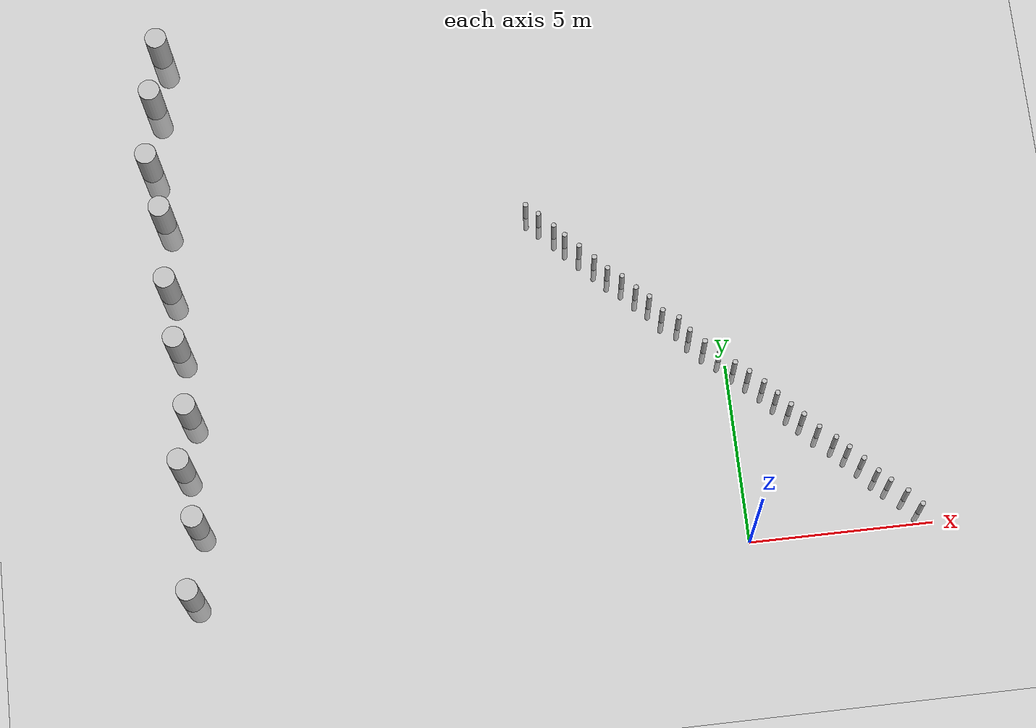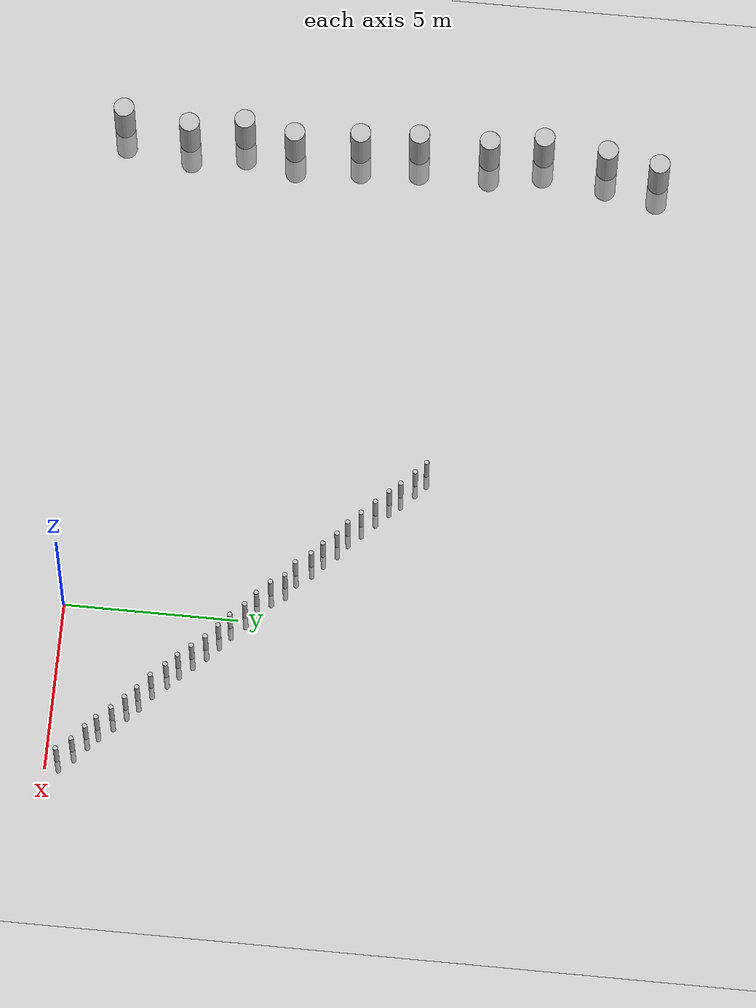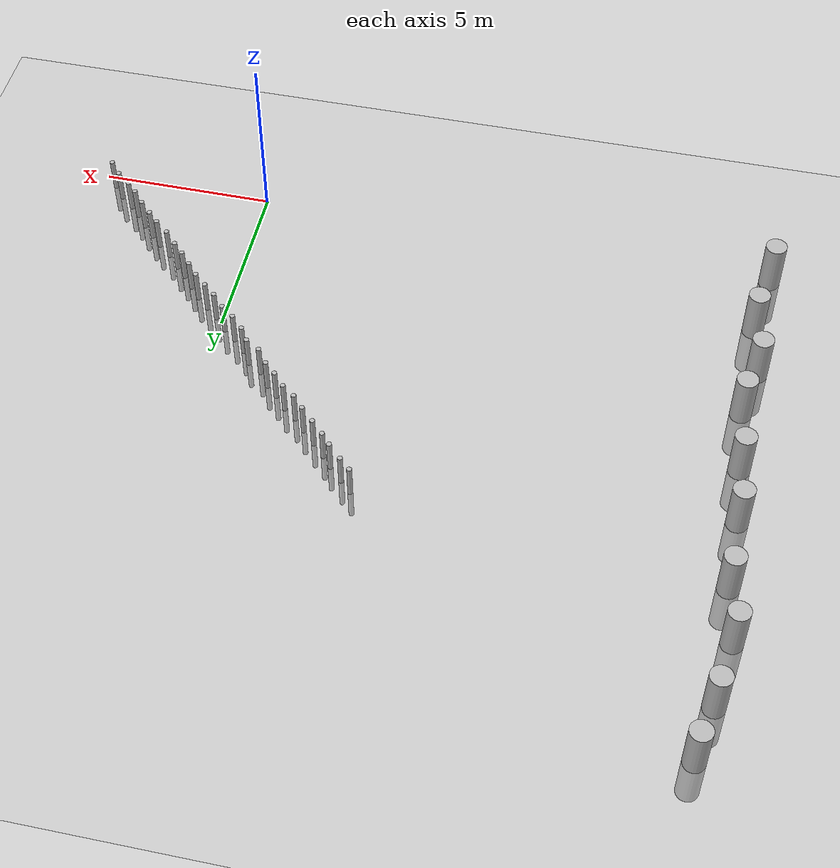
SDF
<sdf version="1.7">
 <world name="farmland_world">
  <model name="ground_plane">
   <static>1</static>
   <link name="link">
    <collision name="collision">
     <geometry><plane><normal>0 0 1</normal><size>40.0 40.0</size></plane></geometry>
     <surface><friction><ode><mu>100</mu><mu2>50</mu2></ode></friction></surface>
    </collision>
    <visual name="visual">
     <cast_shadows>0</cast_shadows>
     <geometry><plane><normal>0 0 1</normal><size>40.0 40.0</size></plane></geometry>
     <material>
      <script><uri>file://media/materials/scripts/gazebo.material</uri><name>Gazebo/Grey</name></script>
     </material>
    </visual>
   </link>
  </model>
  <model name="tree_0_0">
   <static>1</static>
   <link name="link">
    <collision name="collision">
     <geometry><cylinder><radius>0.3</radius><length>3.0</length></cylinder></geometry>
     <surface><friction><ode><mu>100</mu><mu2>50</mu2></ode></friction></surface>
    </collision>
    <visual name="visual">
     <geometry><cylinder><radius>0.3</radius><length>3.0</length></cylinder></geometry>
    </visual>
   </link>
   <pose>-14.76430496062966 15.89478843010668 0 0 0 0</pose>
  </model>
  <model name="tree_0_1">
   <static>1</static>
   <link name="link">
    <collision name="collision">
     <geometry><cylinder><radius>0.3</radius><length>3.0</length></cylinder></geometry>
     <surface><friction><ode><mu>100</mu><mu2>50</mu2></ode></friction></surface>
    </collision>
    <visual name="visual">
     <geometry><cylinder><radius>0.3</radius><length>3.0</length></cylinder></geometry>
    </visual>
   </link>
   <pose>-15.056819486717739 14.35567555755278 0 0 0 0</pose>
  </model>
  <model name="tree_0_2">
   <static>1</static>
   <link name="link">
    <collision name="collision">
     <geometry><cylinder><radius>0.3</radius><length>3.0</length></cylinder></geometry>
     <surface><friction><ode><mu>100</mu><mu2>50</mu2></ode></friction></surface>
    </collision>
    <visual name="visual">
     <geometry><cylinder><radius>0.3</radius><length>3.0</length></cylinder></geometry>
    </visual>
   </link>
   <pose>-15.291484065133996 12.474805489618497 0 0 0 0</pose>
  </model>
  <model name="tree_0_3">
   <static>1</static>
   <link name="link">
    <collision name="collision">
     <geometry><cylinder><radius>0.3</radius><length>3.0</length></cylinder></geometry>
     <surface><friction><ode><mu>100</mu><mu2>50</mu2></ode></friction></surface>
    </collision>
    <visual name="visual">
     <geometry><cylinder><radius>0.3</radius><length>3.0</length></cylinder></geometry>
    </visual>
   </link>
   <pose>-15.030493268445625 10.89161772977665 0 0 0 0</pose>
  </model>
  <model name="tree_0_4">
   <static>1</static>
   <link name="link">
    <collision name="collision">
     <geometry><cylinder><radius>0.3</radius><length>3.0</length></cylinder></geometry>
     <surface><friction><ode><mu>100</mu><mu2>50</mu2></ode></friction></surface>
    </collision>
    <visual name="visual">
     <geometry><cylinder><radius>0.3</radius><length>3.0</length></cylinder></geometry>
    </visual>
   </link>
   <pose>-15.037458959636028 8.818756028555212 0 0 0 0</pose>
  </model>
  <model name="tree_0_5">
   <static>1</static>
   <link name="link">
    <collision name="collision">
     <geometry><cylinder><radius>0.3</radius><length>3.0</length></cylinder></geometry>
     <surface><friction><ode><mu>100</mu><mu2>50</mu2></ode></friction></surface>
    </collision>
    <visual name="visual">
     <geometry><cylinder><radius>0.3</radius><length>3.0</length></cylinder></geometry>
    </visual>
   </link>
   <pose>-14.911867252612879 7.096838231186088 0 0 0 0</pose>
  </model>
  <model name="tree_0_6">
   <static>1</static>
   <link name="link">
    <collision name="collision">
     <geometry><cylinder><radius>0.3</radius><length>3.0</length></cylinder></geometry>
     <surface><friction><ode><mu>100</mu><mu2>50</mu2></ode></friction></surface>
    </collision>
    <visual name="visual">
     <geometry><cylinder><radius>0.3</radius><length>3.0</length></cylinder></geometry>
    </visual>
   </link>
   <pose>-14.758496227689701 5.17250384292366 0 0 0 0</pose>
  </model>
  <model name="tree_0_7">
   <static>1</static>
   <link name="link">
    <collision name="collision">
     <geometry><cylinder><radius>0.3</radius><length>3.0</length></cylinder></geometry>
     <surface><friction><ode><mu>100</mu><mu2>50</mu2></ode></friction></surface>
    </collision>
    <visual name="visual">
     <geometry><cylinder><radius>0.3</radius><length>3.0</length></cylinder></geometry>
    </visual>
   </link>
   <pose>-15.037306225950074 3.6729829086936476 0 0 0 0</pose>
  </model>
  <model name="tree_0_8">
   <static>1</static>
   <link name="link">
    <collision name="collision">
     <geometry><cylinder><radius>0.3</radius><length>3.0</length></cylinder></geometry>
     <surface><friction><ode><mu>100</mu><mu2>50</mu2></ode></friction></surface>
    </collision>
    <visual name="visual">
     <geometry><cylinder><radius>0.3</radius><length>3.0</length></cylinder></geometry>
    </visual>
   </link>
   <pose>-14.781667864678498 2.0638729622215193 0 0 0 0</pose>
  </model>
  <model name="tree_0_9">
   <static>1</static>
   <link name="link">
    <collision name="collision">
     <geometry><cylinder><radius>0.3</radius><length>3.0</length></cylinder></geometry>
     <surface><friction><ode><mu>100</mu><mu2>50</mu2></ode></friction></surface>
    </collision>
    <visual name="visual">
     <geometry><cylinder><radius>0.3</radius><length>3.0</length></cylinder></geometry>
    </visual>
   </link>
   <pose>-15.065755940395432 0.10606811235640753 0 0 0 0</pose>
  </model>
  <model name="tree_3_1">
   <static>1</static>
   <link name="link">
    <collision name="collision">
     <geometry><cylinder><radius>0.07</radius><length>2.0</length></cylinder></geometry>
     <surface><friction><ode><mu>100</mu><mu2>50</mu2></ode></friction></surface>
    </collision>
    <visual name="visual">
     <geometry><cylinder><radius>0.07</radius><length>2.0</length></cylinder></geometry>
    </visual>
   </link>
   <pose>4.666414493084543 0.32351547224772587 0 0 0 0</pose>
  </model>
  <model name="tree_3_2">
   <static>1</static>
   <link name="link">
    <collision name="collision">
     <geometry><cylinder><radius>0.07</radius><length>2.0</length></cylinder></geometry>
     <surface><friction><ode><mu>100</mu><mu2>50</mu2></ode></friction></surface>
    </collision>
    <visual name="visual">
     <geometry><cylinder><radius>0.07</radius><length>2.0</length></cylinder></geometry>
    </visual>
   </link>
   <pose>4.327326058671535 0.727711495238192 0 0 0 0</pose>
  </model>
  <model name="tree_3_3">
   <static>1</static>
   <link name="link">
    <collision name="collision">
     <geometry><cylinder><radius>0.07</radius><length>2.0</length></cylinder></geometry>
     <surface><friction><ode><mu>100</mu><mu2>50</mu2></ode></friction></surface>
    </collision>
    <visual name="visual">
     <geometry><cylinder><radius>0.07</radius><length>2.0</length></cylinder></geometry>
    </visual>
   </link>
   <pose>3.9206681212745536 1.073091203636044 0 0 0 0</pose>
  </model>
  <model name="tree_3_4">
   <static>1</static>
   <link name="link">
    <collision name="collision">
     <geometry><cylinder><radius>0.07</radius><length>2.0</length></cylinder></geometry>
     <surface><friction><ode><mu>100</mu><mu2>50</mu2></ode></friction></surface>
    </collision>
    <visual name="visual">
     <geometry><cylinder><radius>0.07</radius><length>2.0</length></cylinder></geometry>
    </visual>
   </link>
   <pose>3.6208742611745897 1.3595875772986568 0 0 0 0</pose>
  </model>
  <model name="tree_3_5">
   <static>1</static>
   <link name="link">
    <collision name="collision">
     <geometry><cylinder><radius>0.07</radius><length>2.0</length></cylinder></geometry>
     <surface><friction><ode><mu>100</mu><mu2>50</mu2></ode></friction></surface>
    </collision>
    <visual name="visual">
     <geometry><cylinder><radius>0.07</radius><length>2.0</length></cylinder></geometry>
    </visual>
   </link>
   <pose>3.288307485765259 1.7462806925272474 0 0 0 0</pose>
  </model>
  <model name="tree_3_6">
   <static>1</static>
   <link name="link">
    <collision name="collision">
     <geometry><cylinder><radius>0.07</radius><length>2.0</length></cylinder></geometry>
     <surface><friction><ode><mu>100</mu><mu2>50</mu2></ode></friction></surface>
    </collision>
    <visual name="visual">
     <geometry><cylinder><radius>0.07</radius><length>2.0</length></cylinder></geometry>
    </visual>
   </link>
   <pose>2.9415913830741833 2.0991981190664446 0 0 0 0</pose>
  </model>
  <model name="tree_3_7">
   <static>1</static>
   <link name="link">
    <collision name="collision">
     <geometry><cylinder><radius>0.07</radius><length>2.0</length></cylinder></geometry>
     <surface><friction><ode><mu>100</mu><mu2>50</mu2></ode></friction></surface>
    </collision>
    <visual name="visual">
     <geometry><cylinder><radius>0.07</radius><length>2.0</length></cylinder></geometry>
    </visual>
   </link>
   <pose>2.6242985141962873 2.4097343577449406 0 0 0 0</pose>
  </model>
  <model name="tree_3_8">
   <static>1</static>
   <link name="link">
    <collision name="collision">
     <geometry><cylinder><radius>0.07</radius><length>2.0</length></cylinder></geometry>
     <surface><friction><ode><mu>100</mu><mu2>50</mu2></ode></friction></surface>
    </collision>
    <visual name="visual">
     <geometry><cylinder><radius>0.07</radius><length>2.0</length></cylinder></geometry>
    </visual>
   </link>
   <pose>2.2156188771765364 2.7490315847237983 0 0 0 0</pose>
  </model>
  <model name="tree_3_9">
   <static>1</static>
   <link name="link">
    <collision name="collision">
     <geometry><cylinder><radius>0.07</radius><length>2.0</length></cylinder></geometry>
     <surface><friction><ode><mu>100</mu><mu2>50</mu2></ode></friction></surface>
    </collision>
    <visual name="visual">
     <geometry><cylinder><radius>0.07</radius><length>2.0</length></cylinder></geometry>
    </visual>
   </link>
   <pose>1.8531644775531264 3.142639206985092 0 0 0 0</pose>
  </model>
  <model name="tree_3_10">
   <static>1</static>
   <link name="link">
    <collision name="collision">
     <geometry><cylinder><radius>0.07</radius><length>2.0</length></cylinder></geometry>
     <surface><friction><ode><mu>100</mu><mu2>50</mu2></ode></friction></surface>
    </collision>
    <visual name="visual">
     <geometry><cylinder><radius>0.07</radius><length>2.0</length></cylinder></geometry>
    </visual>
   </link>
   <pose>1.5402976649572706 3.4551251372005636 0 0 0 0</pose>
  </model>
  <model name="tree_3_11">
   <static>1</static>
   <link name="link">
    <collision name="collision">
     <geometry><cylinder><radius>0.07</radius><length>2.0</length></cylinder></geometry>
     <surface><friction><ode><mu>100</mu><mu2>50</mu2></ode></friction></surface>
    </collision>
    <visual name="visual">
     <geometry><cylinder><radius>0.07</radius><length>2.0</length></cylinder></geometry>
    </visual>
   </link>
   <pose>1.223355499514305 3.816667943500943 0 0 0 0</pose>
  </model>
  <model name="tree_3_12">
   <static>1</static>
   <link name="link">
    <collision name="collision">
     <geometry><cylinder><radius>0.07</radius><length>2.0</length></cylinder></geometry>
     <surface><friction><ode><mu>100</mu><mu2>50</mu2></ode></friction></surface>
    </collision>
    <visual name="visual">
     <geometry><cylinder><radius>0.07</radius><length>2.0</length></cylinder></geometry>
    </visual>
   </link>
   <pose>0.9089872317535558 4.180496149204075 0 0 0 0</pose>
  </model>
  <model name="tree_3_13">
   <static>1</static>
   <link name="link">
    <collision name="collision">
     <geometry><cylinder><radius>0.07</radius><length>2.0</length></cylinder></geometry>
     <surface><friction><ode><mu>100</mu><mu2>50</mu2></ode></friction></surface>
    </collision>
    <visual name="visual">
     <geometry><cylinder><radius>0.07</radius><length>2.0</length></cylinder></geometry>
    </visual>
   </link>
   <pose>0.5431432708041817 4.50960770835405 0 0 0 0</pose>
  </model>
  <model name="tree_3_14">
   <static>1</static>
   <link name="link">
    <collision name="collision">
     <geometry><cylinder><radius>0.07</radius><length>2.0</length></cylinder></geometry>
     <surface><friction><ode><mu>100</mu><mu2>50</mu2></ode></friction></surface>
    </collision>
    <visual name="visual">
     <geometry><cylinder><radius>0.07</radius><length>2.0</length></cylinder></geometry>
    </visual>
   </link>
   <pose>0.19327763020924785 4.8067828354246505 0 0 0 0</pose>
  </model>
  <model name="tree_3_15">
   <static>1</static>
   <link name="link">
    <collision name="collision">
     <geometry><cylinder><radius>0.07</radius><length>2.0</length></cylinder></geometry>
     <surface><friction><ode><mu>100</mu><mu2>50</mu2></ode></friction></surface>
    </collision>
    <visual name="visual">
     <geometry><cylinder><radius>0.07</radius><length>2.0</length></cylinder></geometry>
    </visual>
   </link>
   <pose>-0.16650596462892253 5.198649531096143 0 0 0 0</pose>
  </model>
  <model name="tree_3_16">
   <static>1</static>
   <link name="link">
    <collision name="collision">
     <geometry><cylinder><radius>0.07</radius><length>2.0</length></cylinder></geometry>
     <surface><friction><ode><mu>100</mu><mu2>50</mu2></ode></friction></surface>
    </collision>
    <visual name="visual">
     <geometry><cylinder><radius>0.07</radius><length>2.0</length></cylinder></geometry>
    </visual>
   </link>
   <pose>-0.5466216648147532 5.492347583649665 0 0 0 0</pose>
  </model>
  <model name="tree_3_17">
   <static>1</static>
   <link name="link">
    <collision name="collision">
     <geometry><cylinder><radius>0.07</radius><length>2.0</length></cylinder></geometry>
     <surface><friction><ode><mu>100</mu><mu2>50</mu2></ode></friction></surface>
    </collision>
    <visual name="visual">
     <geometry><cylinder><radius>0.07</radius><length>2.0</length></cylinder></geometry>
    </visual>
   </link>
   <pose>-0.9105077701055004 5.860100956636185 0 0 0 0</pose>
  </model>
  <model name="tree_3_18">
   <static>1</static>
   <link name="link">
    <collision name="collision">
     <geometry><cylinder><radius>0.07</radius><length>2.0</length></cylinder></geometry>
     <surface><friction><ode><mu>100</mu><mu2>50</mu2></ode></friction></surface>
    </collision>
    <visual name="visual">
     <geometry><cylinder><radius>0.07</radius><length>2.0</length></cylinder></geometry>
    </visual>
   </link>
   <pose>-1.1665393658515095 6.246971582877478 0 0 0 0</pose>
  </model>
  <model name="tree_3_19">
   <static>1</static>
   <link name="link">
    <collision name="collision">
     <geometry><cylinder><radius>0.07</radius><length>2.0</length></cylinder></geometry>
     <surface><friction><ode><mu>100</mu><mu2>50</mu2></ode></friction></surface>
    </collision>
    <visual name="visual">
     <geometry><cylinder><radius>0.07</radius><length>2.0</length></cylinder></geometry>
    </visual>
   </link>
   <pose>-1.5805844429625295 6.50857831460805 0 0 0 0</pose>
  </model>
  <model name="tree_3_20">
   <static>1</static>
   <link name="link">
    <collision name="collision">
     <geometry><cylinder><radius>0.07</radius><length>2.0</length></cylinder></geometry>
     <surface><friction><ode><mu>100</mu><mu2>50</mu2></ode></friction></surface>
    </collision>
    <visual name="visual">
     <geometry><cylinder><radius>0.07</radius><length>2.0</length></cylinder></geometry>
    </visual>
   </link>
   <pose>-1.8935335347469768 6.93343362681753 0 0 0 0</pose>
  </model>
  <model name="tree_3_21">
   <static>1</static>
   <link name="link">
    <collision name="collision">
     <geometry><cylinder><radius>0.07</radius><length>2.0</length></cylinder></geometry>
     <surface><friction><ode><mu>100</mu><mu2>50</mu2></ode></friction></surface>
    </collision>
    <visual name="visual">
     <geometry><cylinder><radius>0.07</radius><length>2.0</length></cylinder></geometry>
    </visual>
   </link>
   <pose>-2.2275801125449304 7.237096897927379 0 0 0 0</pose>
  </model>
  <model name="tree_3_22">
   <static>1</static>
   <link name="link">
    <collision name="collision">
     <geometry><cylinder><radius>0.07</radius><length>2.0</length></cylinder></geometry>
     <surface><friction><ode><mu>100</mu><mu2>50</mu2></ode></friction></surface>
    </collision>
    <visual name="visual">
     <geometry><cylinder><radius>0.07</radius><length>2.0</length></cylinder></geometry>
    </visual>
   </link>
   <pose>-2.5672807939552107 7.608526934264999 0 0 0 0</pose>
  </model>
  <model name="tree_3_23">
   <static>1</static>
   <link name="link">
    <collision name="collision">
     <geometry><cylinder><radius>0.07</radius><length>2.0</length></cylinder></geometry>
     <surface><friction><ode><mu>100</mu><mu2>50</mu2></ode></friction></surface>
    </collision>
    <visual name="visual">
     <geometry><cylinder><radius>0.07</radius><length>2.0</length></cylinder></geometry>
    </visual>
   </link>
   <pose>-2.937952704684372 7.883876075728797 0 0 0 0</pose>
  </model>
  <model name="tree_3_24">
   <static>1</static>
   <link name="link">
    <collision name="collision">
     <geometry><cylinder><radius>0.07</radius><length>2.0</length></cylinder></geometry>
     <surface><friction><ode><mu>100</mu><mu2>50</mu2></ode></friction></surface>
    </collision>
    <visual name="visual">
     <geometry><cylinder><radius>0.07</radius><length>2.0</length></cylinder></geometry>
    </visual>
   </link>
   <pose>-3.2645270255973546 8.237192175093059 0 0 0 0</pose>
  </model>
  <model name="tree_3_25">
   <static>1</static>
   <link name="link">
    <collision name="collision">
     <geometry><cylinder><radius>0.07</radius><length>2.0</length></cylinder></geometry>
     <surface><friction><ode><mu>100</mu><mu2>50</mu2></ode></friction></surface>
    </collision>
    <visual name="visual">
     <geometry><cylinder><radius>0.07</radius><length>2.0</length></cylinder></geometry>
    </visual>
   </link>
   <pose>-3.639778054962536 8.61435698596316 0 0 0 0</pose>
  </model>
  <model name="tree_3_26">
   <static>1</static>
   <link name="link">
    <collision name="collision">
     <geometry><cylinder><radius>0.07</radius><length>2.0</length></cylinder></geometry>
     <surface><friction><ode><mu>100</mu><mu2>50</mu2></ode></friction></surface>
    </collision>
    <visual name="visual">
     <geometry><cylinder><radius>0.07</radius><length>2.0</length></cylinder></geometry>
    </visual>
   </link>
   <pose>-3.9972405083942957 8.971863357503098 0 0 0 0</pose>
  </model>
  <model name="tree_3_27">
   <static>1</static>
   <link name="link">
    <collision name="collision">
     <geometry><cylinder><radius>0.07</radius><length>2.0</length></cylinder></geometry>
     <surface><friction><ode><mu>100</mu><mu2>50</mu2></ode></friction></surface>
    </collision>
    <visual name="visual">
     <geometry><cylinder><radius>0.07</radius><length>2.0</length></cylinder></geometry>
    </visual>
   </link>
   <pose>-4.2673981065293605 9.282116789336754 0 0 0 0</pose>
  </model>
  <model name="tree_3_28">
   <static>1</static>
   <link name="link">
    <collision name="collision">
     <geometry><cylinder><radius>0.07</radius><length>2.0</length></cylinder></geometry>
     <surface><friction><ode><mu>100</mu><mu2>50</mu2></ode></friction></surface>
    </collision>
    <visual name="visual">
     <geometry><cylinder><radius>0.07</radius><length>2.0</length></cylinder></geometry>
    </visual>
   </link>
   <pose>-4.655874543531742 9.665551164080881 0 0 0 0</pose>
  </model>
  <model name="tree_3_29">
   <static>1</static>
   <link name="link">
    <collision name="collision">
     <geometry><cylinder><radius>0.07</radius><length>2.0</length></cylinder></geometry>
     <surface><friction><ode><mu>100</mu><mu2>50</mu2></ode></friction></surface>
    </collision>
    <visual name="visual">
     <geometry><cylinder><radius>0.07</radius><length>2.0</length></cylinder></geometry>
    </visual>
   </link>
   <pose>-4.978212045946865 9.967243248800711 0 0 0 0</pose>
  </model>
 </world>
</sdf>
